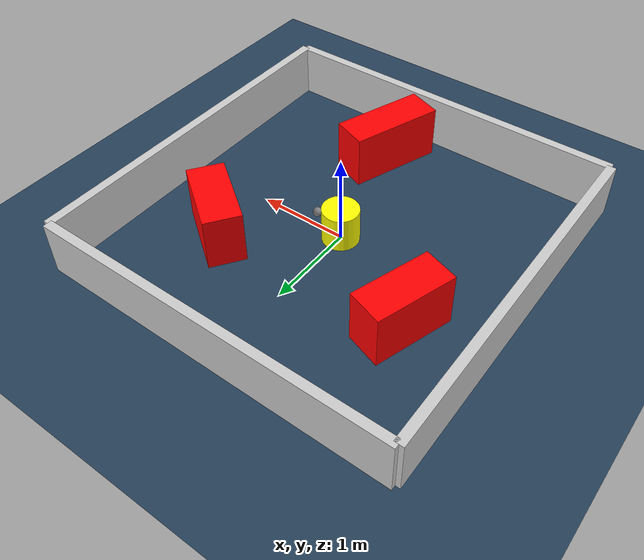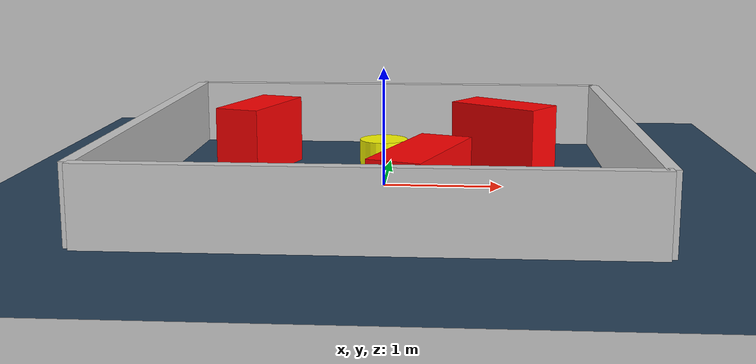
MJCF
<?xml version="1.0" ?>
<mujoco model="generated_environment">
  <option timestep="0.01" integrator="RK4" cone="elliptic"/>
  <default>
    <geom density="1"/>
  </default>
  <asset>
    <texture builtin="gradient" height="3072" rgb1="0.3 0.5 0.7" rgb2="0 0 0" type="skybox" width="512"/>
    <texture builtin="checker" height="300" mark="edge" markrgb="0.8 0.8 0.8" name="groundplane" rgb1="0.2 0.3 0.4" rgb2="0.1 0.2 0.3" type="2d" width="300"/>
    <material name="groundplane" reflectance="0.2" texrepeat="5 5" texture="groundplane" texuniform="true"/>
    <material name="robot" rgba="0.0 1.0 0.0 1"/>
  </asset>
  <worldbody>
    <light dir="0 0 -1" directional="true" pos="0 0 1.5"/>
    <geom condim="4" friction="1.0 0.005 0.001" material="groundplane" name="floor" size="0 0 0.05" type="plane"/>
    <body name="walls">
      <geom name="wall_1" condim="4" pos="-2.0 0.0 0.3" rgba="0.800000011920929 0.800000011920929 0.800000011920929 1.0" size="0.05 2.0 0.3" type="box"/>
      <geom name="wall_2" condim="4" pos="2.0 0.0 0.3" rgba="0.800000011920929 0.800000011920929 0.800000011920929 1.0" size="0.05 2.0 0.3" type="box"/>
      <geom name="wall_3" condim="4" pos="0.0 -2.0 0.3" rgba="0.800000011920929 0.800000011920929 0.800000011920929 1.0" size="2.0 0.05 0.3" type="box"/>
      <geom name="wall_4" condim="4" pos="0.0 2.0 0.3" rgba="0.800000011920929 0.800000011920929 0.800000011920929 1.0" size="2.0 0.05 0.3" type="box"/>
    </body>
    <body name="robot">
      <joint name="joint_x" type="slide" pos="0 0 0" axis="1 0 0"/>
      <joint name="joint_y" type="slide" pos="0 0 0" axis="0 1 0"/>
      <geom name="robot" type="sphere" pos="0.3 0.0 0.2" size="0.05" mass="5." friction="1.0 0.005 0.0001" condim="4" rgba="0.5 0.5 0.5 1.0"/>
      <site name="sensor_ball"/>
    </body>
    <body name="obstacle_movable_1">
      <geom name="obstacle_movable_1" condim="4" pos="0.0 0.0 0.2" euler="0 0 0.0" friction="1.0 0.005 0.001" rgba="1.0 1.0 0.0 1.0" size="0.2 0.2 0.0" type="cylinder" mass="0.1"/>
      <joint type="free"/>
    </body>
    <body name="obstacle_2_static">
      <geom name="obstacle_2_static" condim="4" pos="-1.1698616008565164 0.656009432508619 0.3" euler="0 0 72.10124685771683" friction="1.0 0.005 0.001" rgba="1 0 0 1" size="0.4421158655249634 0.2 0.3" type="box"/>
    </body>
    <body name="obstacle_3_static">
      <geom name="obstacle_3_static" condim="4" pos="0.3527264701550026 -1.3605955482148246 0.3" euler="0 0 250.18916380844007" friction="1.0 0.005 0.001" rgba="1 0 0 1" size="0.5229987477706196 0.2 0.3" type="box"/>
    </body>
    <body name="obstacle_4_static">
      <geom name="obstacle_4_static" condim="4" pos="1.0379680158542488 0.7282070743789297 0.3" euler="0 0 324.6280861508479" friction="1.0 0.005 0.001" rgba="1 0 0 1" size="0.4271057601300776 0.2 0.3" type="box"/>
    </body>
  </worldbody>
  <actuator>
    <motor name="actuator_x" joint="joint_x" gear="1" ctrlrange="-1 1"/>
    <motor name="actuator_y" joint="joint_y" gear="1" ctrlrange="-1 1"/>
  </actuator>
</mujoco>
